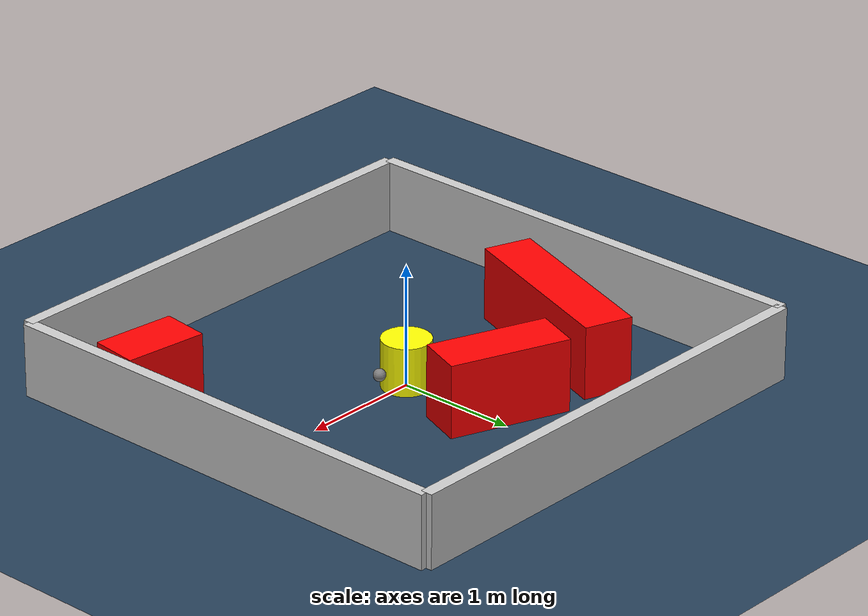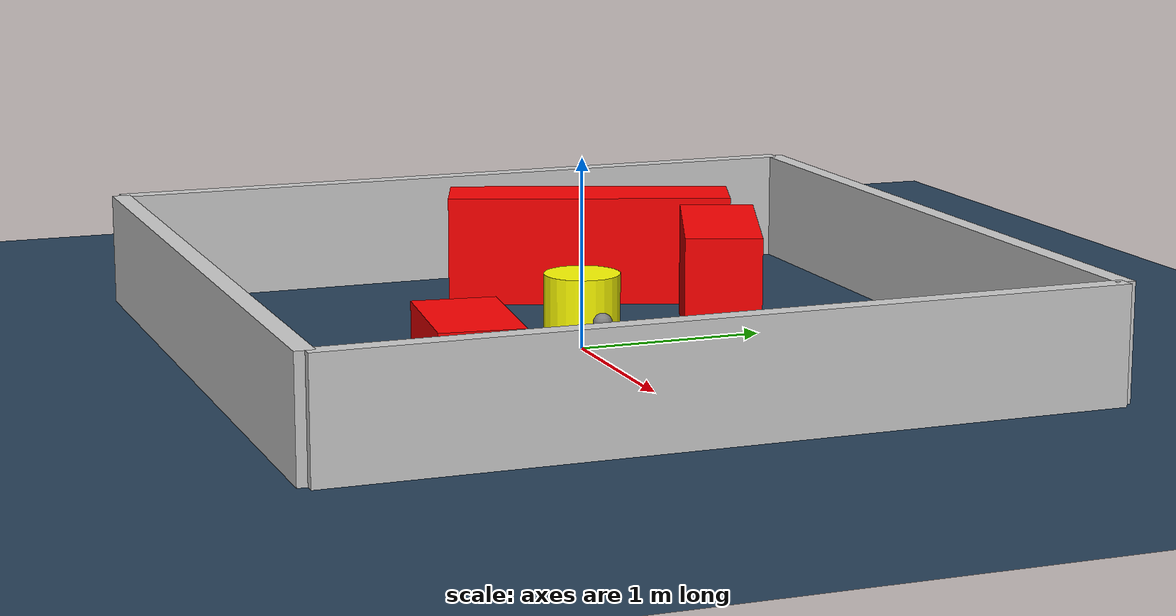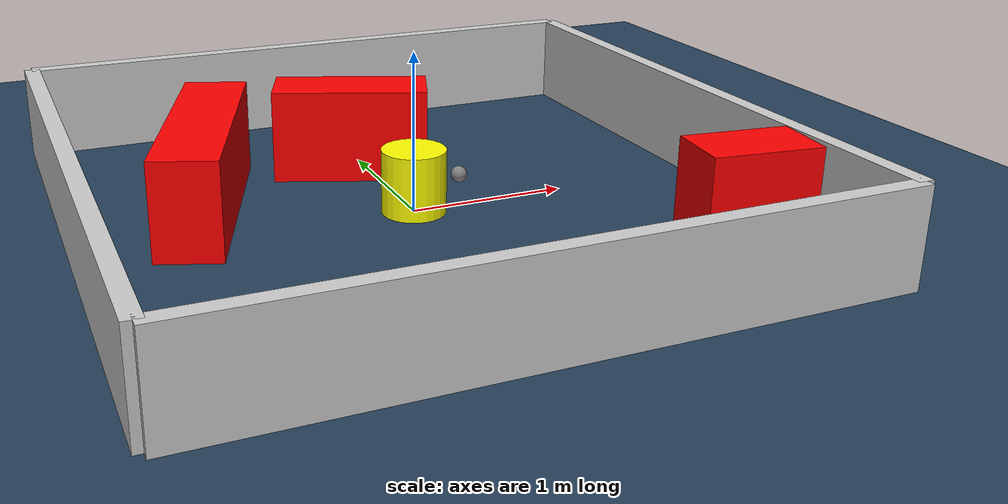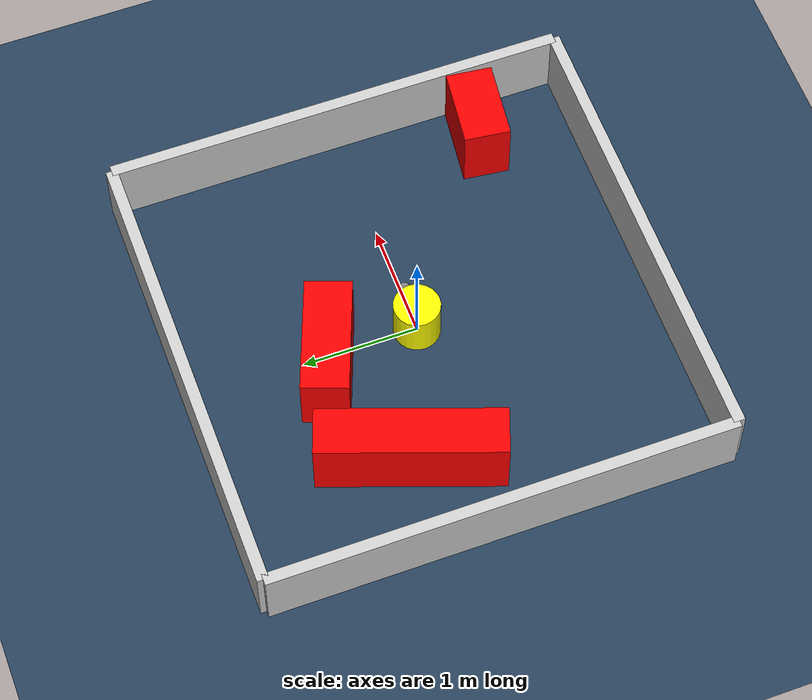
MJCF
<?xml version="1.0" ?>
<mujoco model="generated_environment">
  <option timestep="0.01" integrator="RK4" cone="elliptic"/>
  <default>
    <geom density="1"/>
  </default>
  <asset>
    <texture builtin="gradient" height="3072" rgb1="0.3 0.5 0.7" rgb2="0 0 0" type="skybox" width="512"/>
    <texture builtin="checker" height="300" mark="edge" markrgb="0.8 0.8 0.8" name="groundplane" rgb1="0.2 0.3 0.4" rgb2="0.1 0.2 0.3" type="2d" width="300"/>
    <material name="groundplane" reflectance="0.2" texrepeat="5 5" texture="groundplane" texuniform="true"/>
    <material name="robot" rgba="0.0 1.0 0.0 1"/>
  </asset>
  <worldbody>
    <light dir="0 0 -1" directional="true" pos="0 0 1.5"/>
    <geom condim="4" friction="1.0 0.005 0.001" material="groundplane" name="floor" size="0 0 0.05" type="plane"/>
    <body name="walls">
      <geom name="wall_1" condim="4" pos="-2.0 0.0 0.3" rgba="0.800000011920929 0.800000011920929 0.800000011920929 1.0" size="0.05 2.0 0.3" type="box"/>
      <geom name="wall_2" condim="4" pos="2.0 0.0 0.3" rgba="0.800000011920929 0.800000011920929 0.800000011920929 1.0" size="0.05 2.0 0.3" type="box"/>
      <geom name="wall_3" condim="4" pos="0.0 -2.0 0.3" rgba="0.800000011920929 0.800000011920929 0.800000011920929 1.0" size="2.0 0.05 0.3" type="box"/>
      <geom name="wall_4" condim="4" pos="0.0 2.0 0.3" rgba="0.800000011920929 0.800000011920929 0.800000011920929 1.0" size="2.0 0.05 0.3" type="box"/>
    </body>
    <body name="robot">
      <joint name="joint_x" type="slide" pos="0 0 0" axis="1 0 0"/>
      <joint name="joint_y" type="slide" pos="0 0 0" axis="0 1 0"/>
      <geom name="robot" type="sphere" pos="0.3 0.0 0.2" size="0.05" mass="5." friction="1.0 0.005 0.0001" condim="4" rgba="0.5 0.5 0.5 1.0"/>
      <site name="sensor_ball"/>
    </body>
    <body name="obstacle_movable_1">
      <geom name="obstacle_movable_1" condim="4" pos="0.0 0.0 0.2" euler="0 0 0.0" friction="1.0 0.005 0.001" rgba="1.0 1.0 0.0 1.0" size="0.2 0.2 0.0" type="cylinder" mass="0.1"/>
      <joint type="free"/>
    </body>
    <body name="obstacle_2_static">
      <geom name="obstacle_2_static" condim="4" pos="-0.11113031064649892 0.8232299545689103 0.3" euler="0 0 338.94314118263543" friction="1.0 0.005 0.001" rgba="1 0 0 1" size="0.4986926640880134 0.2 0.3" type="box"/>
    </body>
    <body name="obstacle_3_static">
      <geom name="obstacle_3_static" condim="4" pos="-1.1762336528317325 0.4819090817988625 0.3" euler="0 0 70.05928320468125" friction="1.0 0.005 0.001" rgba="1 0 0 1" size="0.7840324760597395 0.2 0.3" type="box"/>
    </body>
    <body name="obstacle_4_static">
      <geom name="obstacle_4_static" condim="4" pos="1.5792538555546987 -1.1383234795251203 0.3" euler="0 0 173.11526306944646" friction="1.0 0.005 0.001" rgba="1 0 0 1" size="0.3408028238215376 0.2 0.3" type="box"/>
    </body>
  </worldbody>
  <actuator>
    <motor name="actuator_x" joint="joint_x" gear="1" ctrlrange="-1 1"/>
    <motor name="actuator_y" joint="joint_y" gear="1" ctrlrange="-1 1"/>
  </actuator>
</mujoco>
